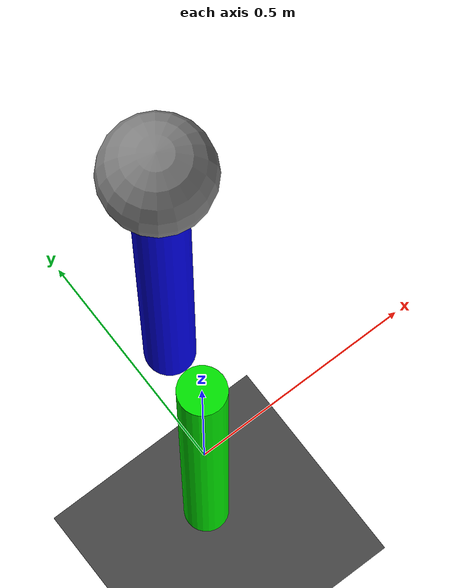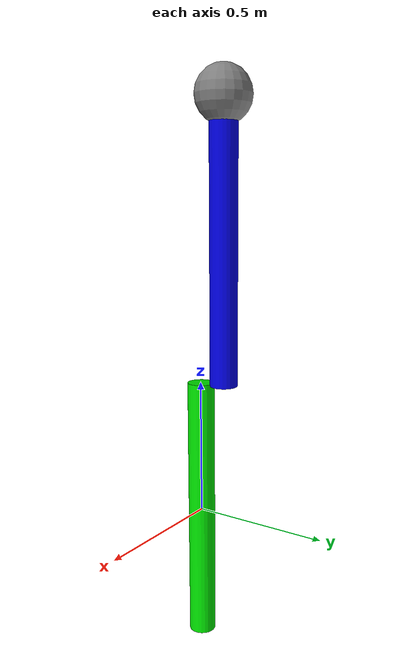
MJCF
<mujoco>
	<option timestep="0.0001" integrator="RK4" >
		<flag sensornoise="enable" energy="enable" />
	</option>

	<asset>
	  <texture type="skybox" builtin="gradient" rgb1="0.6 0.6 0.6" rgb2="0 0 0" width="512" height="512"/>

	  <texture name="texplane" type="2d" builtin="checker" rgb1=".25 .25 .25" rgb2=".3 .3 .3" width="512" height="512" mark="cross" markrgb=".8 .8 .8"/>

      <material name="matplane" reflectance="0.3" texture="texplane" texrepeat="1 1" texuniform="true"/>
	</asset>

	<worldbody>
        <light diffuse=".5 .5 .5" pos="0 0 3" dir="0 0 -1"/>
		<geom name="floor" pos="0 0 -2.1" size="0 0 1" type="plane" material="matplane"/>
		<light directional="true" diffuse=".8 .8 .8" specular=".2 .2 .2" pos="0 0 5" dir="0 0 -1"/>
		<body pos="0 0 0" euler="0 0 0">
			<joint name="pin" type="hinge" axis = "0 -1 0" pos="0 0 -0.5"/>
			<geom type="cylinder" size="0.05 0.5" rgba="0 .9 0 1" mass="1"/>
			<body pos="0 0.1 1" euler="0 0 0">
				<joint name="pin2" type="hinge" axis = "0 -1 0" pos="0 0 -0.5"/>
				<geom type="cylinder" size="0.05 0.5" rgba="0 0 .9 1" mass="1"/>
				<site name="endeff" pos="0 0 0.5" size="0.1"/>
			</body>
		</body>
	</worldbody>
	 <actuator>
		<motor joint="pin" name="torque" gear="1" ctrllimited="true" ctrlrange="-50 50" />
		<position name="position_servo" joint="pin" kp="0" />
		<velocity name="velocity_servo" joint="pin" kv="0" />
	</actuator>
	<sensor>
		<jointpos joint="pin" noise="0.2"/>
		<jointvel joint="pin" noise="1" />
	</sensor>
		 <actuator>
		<motor joint="pin2" name="torque2" gear="1" ctrllimited="true" ctrlrange="-50 50" />
		<position name="position_servo2" joint="pin2" kp="0" />
		<velocity name="velocity_servo2" joint="pin2" kv="0" />
	</actuator>
	<sensor>
		<jointpos joint="pin2" noise="0.2"/>
		<jointvel joint="pin2" noise="1" />
	</sensor>
</mujoco>
